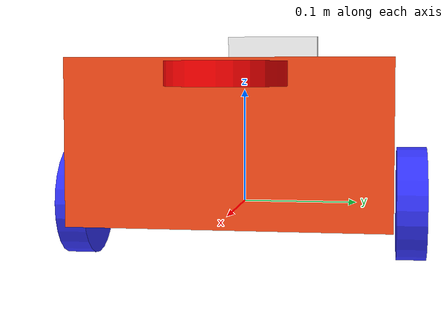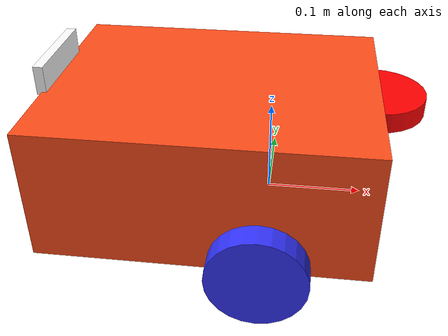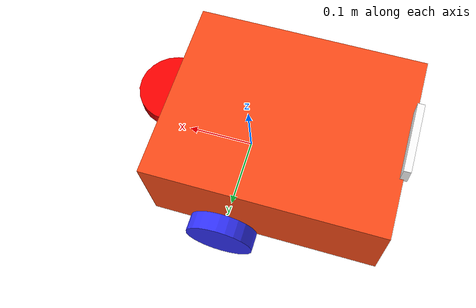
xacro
<?xml version="1.0"?>
<robot xmlns:xacro="http://www.ros.org/wiki/xacro"  name="robot">

    <xacro:include filename="robot.xacro" />

    <gazebo>
        <plugin name="diff_drive" filename="libgazebo_ros_diff_drive.so">

            <!-- Wheel Information -->
            <left_joint>left_wheel_joint</left_joint>
            <right_joint>right_wheel_joint</right_joint>
            <wheel_separation>0.35</wheel_separation>
            <wheel_diameter>0.1</wheel_diameter>

            <!-- Limits -->
            <max_wheel_torque>200</max_wheel_torque>
            <max_wheel_acceleration>10.0</max_wheel_acceleration>

            <!-- Output -->
            <odometry_frame>odom</odometry_frame>
            <robot_base_frame>base_link</robot_base_frame>

            <publish_odom>true</publish_odom>
            <publish_odom_tf>true</publish_odom_tf>
            <publish_wheel_tf>true</publish_wheel_tf>

        </plugin>
    </gazebo>
</robot>

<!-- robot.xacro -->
<robot xmlns:xacro="http://www.ros.org/wiki/xacro" name="robot">

    <xacro:include filename="inertial_macros.xacro"/>

    <xacro:property name="chassis_length" value="0.335"/>
    <xacro:property name="chassis_width" value="0.265"/>
    <xacro:property name="chassis_height" value="0.138"/>
    <xacro:property name="chassis_mass" value="1.0"/>
    <xacro:property name="wheel_radius" value="0.05"/>
    <xacro:property name="wheel_thickness" value="0.026"/>
    <xacro:property name="wheel_mass" value="0.05"/>
    <xacro:property name="wheel_offset_x" value="0.226"/>
    <xacro:property name="wheel_offset_y" value="0.1485"/>
    <xacro:property name="wheel_offset_z" value="0.01"/>
    <xacro:property name="caster_wheel_radius" value="0.07"/>
    <xacro:property name="caster_wheel_mass" value="0.01"/>
    <xacro:property name="caster_wheel_offset_x" value="0.075"/>
    <xacro:property name="caster_wheel_offset_z" value="${wheel_offset_z - wheel_radius + caster_wheel_radius}"/>

    <material name="white">
        <color rgba="1 1 1 1" />
    </material>

    <material name="orange">
        <color rgba="1 0.3 0.1 1"/>
    </material>

    <material name="blue">
        <color rgba="0.2 0.2 1 1"/>
    </material>

    <material name="black">
        <color rgba="0 0 0 1"/>
    </material>

    <material name="red">
        <color rgba="1 0 0 1"/>
    </material>

    <!-- BASE LINK -->

    <link name="base_link">

    </link>

    <!-- BASE_FOOTPRINT LINK -->

    <joint name="base_footprint_joint" type="fixed">
        <parent link="base_link"/>
        <child link="base_footprint"/>
        <origin xyz="0 0 0" rpy="0 0 0"/>
    </joint>

    <link name="base_footprint">
    </link>

    <!-- CHASSIS LINK -->

    <joint name="chassis_joint" type="fixed">
        <parent link="base_link"/>
        <child link="chassis"/>
        <origin xyz="${-wheel_offset_x} 0 ${-wheel_offset_z}"/>
    </joint>

    <link name="chassis">
        <visual>
            <origin xyz="${chassis_length/2} 0 ${chassis_height/2}"/>
            <geometry>
                <box size="${chassis_length} ${chassis_width} ${chassis_height}"/>
            </geometry>
            <material name="orange"/>
        </visual>
        <collision>
            <origin xyz="${chassis_length/2} 0 ${chassis_height/2}"/>
            <geometry>
                <box size="${chassis_length} ${chassis_width} ${chassis_height}"/>
            </geometry>
        </collision>
        <xacro:inertial_box mass="0.5" x="${chassis_length}" y="${chassis_width}" z="${chassis_height}">
            <origin xyz="${chassis_length/2} 0 ${chassis_height/2}" rpy="0 0 0"/>
        </xacro:inertial_box>
    </link>

    <gazebo reference="chassis">
        <material>Gazebo/Orange</material>
    </gazebo>

    <!-- LEFT WHEEL LINK -->

    <joint name="left_wheel_joint" type="continuous">
        <parent link="base_link"/>
        <child link="left_wheel"/>
        <origin xyz="0 ${wheel_offset_y} 0" rpy="-${pi/2} 0 0" />
        <axis xyz="0 0 1"/>
    </joint>

    <link name="left_wheel">
        <visual>
            <geometry>
                <cylinder radius="${wheel_radius}" length="${wheel_thickness}"/>
            </geometry>
            <material name="blue"/>
        </visual>
        <collision>
            <geometry>
                <sphere radius="${wheel_radius}"/>
            </geometry>
        </collision>
        <xacro:inertial_cylinder mass="${wheel_mass}" length="${wheel_thickness}" radius="${wheel_radius}">
            <origin xyz="0 0 0" rpy="0 0 0"/>
        </xacro:inertial_cylinder>
    </link>

    <gazebo reference="left_wheel">
        <material>Gazebo/Blue</material>
    </gazebo>

    <!-- RIGHT WHEEL LINK -->

    <joint name="right_wheel_joint" type="continuous">
        <parent link="base_link"/>
        <child link="right_wheel"/>
        <origin xyz="0 ${-wheel_offset_y} 0" rpy="${pi/2} 0 0"/>
        <axis xyz="0 0 -1"/>
</joint>

    <link name="right_wheel">
        <visual>
            <geometry>
                <cylinder radius="${wheel_radius}" length="${wheel_thickness}"/>
            </geometry>
            <material name="blue"/>
        </visual>
        <collision>
            <geometry>
                <sphere radius="${wheel_radius}"/>
            </geometry>
        </collision>
        <xacro:inertial_cylinder mass="${wheel_mass}" length="${wheel_thickness}" radius="${wheel_radius}">
            <origin xyz="0 0 0" rpy="0 0 0"/>
        </xacro:inertial_cylinder>
    </link>

    <gazebo reference="right_wheel">
        <material>Gazebo/Blue</material>
    </gazebo>

    <joint name="caster_wheel_joint" type="fixed">
        <parent link="chassis"/>
        <child link="caster_wheel"/>
        <origin xyz="${caster_wheel_offset_x} 0 ${caster_wheel_offset_z}"/>
    </joint>

    <link name="caster_wheel">
        <visual>
            <geometry>
                <sphere radius="${caster_wheel_radius}"/>
            </geometry>
            <material name="black"/>
        </visual>
        <collision>
            <geometry>
                <sphere radius="${caster_wheel_radius}"/>
            </geometry>
        </collision>
        <xacro:inertial_sphere mass="${caster_wheel_mass}" radius="${caster_wheel_radius}">
            <origin xyz="0 0 0" rpy="0 0 0"/>
        </xacro:inertial_sphere>
    </link>

    <gazebo reference="caster_wheel">
        <material>Gazebo/White</material>
        <mu1 value="0.001"/>
        <mu2 value="0.001"/>
    </gazebo>

    <joint name="camera_joint" type="fixed">
        <parent link="chassis"/>
        <child link="camera_link"/>
        <origin xyz="-0.0 0 0.15" rpy="0 0 0"/>
    </joint>

    <link name="camera_link">
        <visual>
            <geometry>
                <box size="0.010 0.10 0.03"/>
            </geometry>
            <material name="white"/>
        </visual>
    </link>

      <gazebo reference="camera_link">
        <material>Gazebo/Red</material>
      </gazebo>

    <joint name="camera_optical_joint" type="fixed">
        <parent link="camera_link"/>
        <child link="camera_link_optical"/>
        <origin xyz="0 0 0" rpy="${-pi/2} 0 ${-pi/2}"/>
    </joint>

    <joint name="laser_joint" type="fixed">
        <parent link="chassis"/>
        <child link="laser_frame"/>
        <origin xyz="0.33 0 0.125" rpy="0 0 0"/>
    </joint>

    <link name="laser_frame">
        <visual>
            <geometry>
                <cylinder radius="0.05" length="0.02"/>
            </geometry>
            <material name="red"/>
        </visual>
        <collision>
            <geometry>
                <cylinder radius="0.05" length="0.04"/>
            </geometry>
        </collision>
        <xacro:inertial_cylinder mass="0.1" length="0.04" radius="0.05">
            <origin xyz="0 0 0" rpy="0 0 0"/>
        </xacro:inertial_cylinder>
    </link>

    <gazebo reference="laser_frame">
        <sensor name="laser" type="ray">
            <pose> 0 0 0 0 0 0 </pose>
            <visualize>false</visualize>
            <update_rate>20</update_rate>
            <ray>
                <scan>
                    <horizontal>
                        <samples>720</samples>
                        <min_angle>-0.52</min_angle>
                        <max_angle>0.52</max_angle>
                    </horizontal>
                </scan>
                <range>
                    <min>0.2</min>
                    <max>5</max>
                </range>
            </ray>
            <plugin name="laser_controller" filename="libgazebo_ros_ray_sensor.so">
                <ros>
                    <argument>~/out:=scan</argument>
                </ros>
                <output_type>sensor_msgs/LaserScan</output_type>
                <frame_name>laser_frame</frame_name>
            </plugin>
        </sensor>
    </gazebo>

    <link name="camera_link_optical"></link>

    <gazebo reference="camera_link">
    <sensor type="camera" name="camera1">
    <alwaysOn>true</alwaysOn>
    <visualize>true</visualize>
      <update_rate>30.0</update_rate>
      <camera name="head">
        <horizontal_fov>1.3962634</horizontal_fov>
        <image>
          <width>800</width>
          <height>800</height>
          <format>R8G8B8</format>
        </image>
        <clip>
          <near>0.4</near>
          <far>100</far>
        </clip>
        <noise>
          <type>gaussian</type>
          <!-- Noise is sampled independently per pixel on each frame.
               That pixel's noise value is added to each of its color
               channels, which at that point lie in the range [0,1]. -->
          <mean>0.0</mean>
          <stddev>0.007</stddev>
        </noise>
      </camera>
      <plugin name="camera_controller" filename="libgazebo_ros_camera.so">
        <updateRate>10.0</updateRate>
        <cameraName>rrbot/camera1</cameraName>
        <imageTopicName>image_raw</imageTopicName>
        <cameraInfoTopicName>camera_info</cameraInfoTopicName>
        <frameName>camera_link_optical</frameName>
        <hackBaseline>0.07</hackBaseline>
        <distortionK1>0.0</distortionK1>
        <distortionK2>0.0</distortionK2>
        <distortionK3>0.0</distortionK3>
        <distortionT1>0.0</distortionT1>
        <distortionT2>0.0</distortionT2>
      </plugin>
    </sensor>
  </gazebo>
</robot>
